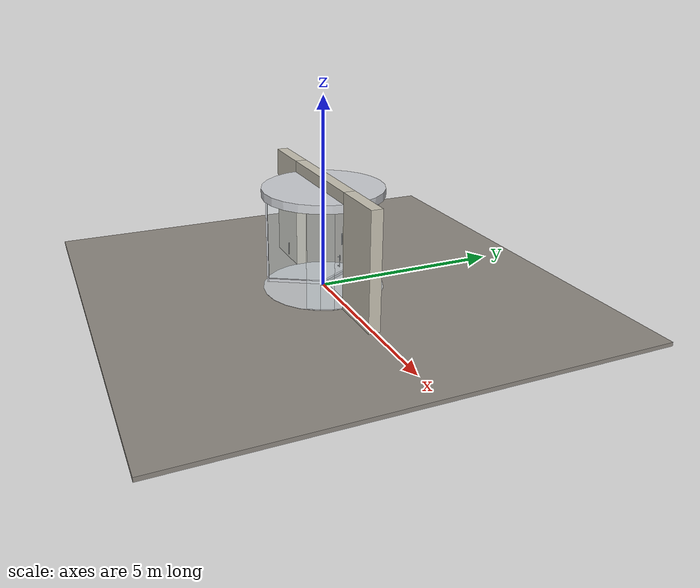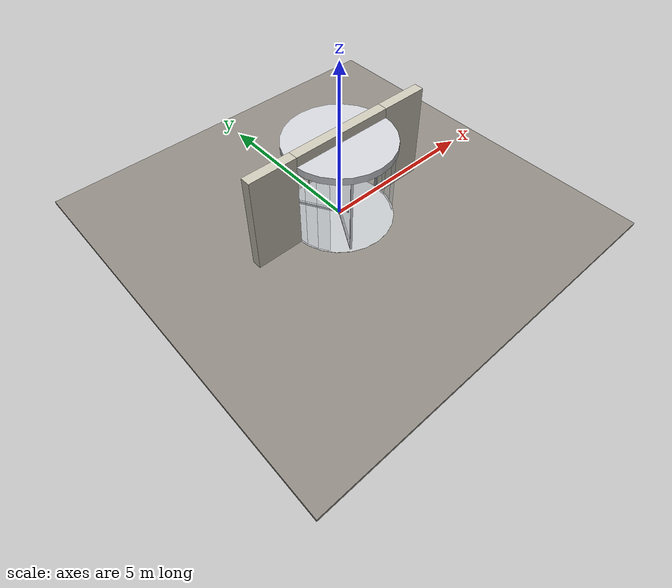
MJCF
<?xml version="1.0" ?>
<mujoco model="db0066_revolving_full">
  <compiler angle="radian" meshdir="../../hardware" texturedir="../../textures" autolimits="true" inertiafromgeom="false"/>
  <option timestep="0.002" integrator="implicitfast" cone="elliptic" impratio="10" noslip_iterations="3">
    <flag multiccd="enable"/>
  </option>
  <size memory="16M"/>
  <default>
    <geom condim="4" solref="0.005 1" solimp="0.95 0.99 0.001"/>
    <joint solreflimit="0.005 1" solimplimit="0.95 0.99 0.001"/>
    <tendon solreflimit="0.005 1"/>
    <equality solref="0.002 1"/>
  </default>
  <visual>
    <headlight ambient="0.4 0.4 0.4" diffuse="0.7 0.7 0.7" specular="0.2 0.2 0.2"/>
    <quality shadowsize="4096"/>
    <map znear="0.01" zfar="60"/>
  </visual>
  <asset>
    <material name="mat_floor" rgba="0.55 0.53 0.5 1" specular="0.2" shininess="0.15" reflectance="0"/>
    <material name="mat_wall" rgba="0.78 0.76 0.7 1" specular="0.2" shininess="0.1" reflectance="0"/>
    <material name="mat_frame" rgba="0.8 0.81 0.83 1" specular="0.8" shininess="0.6" reflectance="0.4"/>
    <material name="mat_drum_glass" rgba="0.85 0.92 0.95 0.25" specular="0.2" shininess="0.95" reflectance="0.1"/>
    <material name="mat_floor_ring" rgba="0.75 0.76 0.77 1" specular="0.8" shininess="0.65" reflectance="0.4"/>
    <material name="mat_op_stainless" rgba="0.75 0.76 0.77 1" specular="0.8" shininess="0.65" reflectance="0.4"/>
    <texture name="skybox" type="skybox" builtin="gradient" rgb1="0.6 0.7 0.85" rgb2="0.9 0.92 0.95" width="256" height="256"/>
  </asset>
  <worldbody>
    <light name="sun" pos="1.5 -2.5 4" dir="-0.3 0.5 -0.8" directional="true" diffuse="0.8 0.8 0.8" specular="0.3 0.3 0.3" castshadow="true"/>
    <light name="fill" pos="-1.5 2.5 3" dir="0.3 -0.5 -0.7" directional="true" diffuse="0.35 0.35 0.4" castshadow="false"/>
    <camera name="robot_view" pos="0 -3.53125 2.33875" xyaxes="1 0 0 0 0.26963 0.962964" fovy="52"/>
    <camera name="far_view" pos="0 3.53125 2.33875" xyaxes="-1 0 0 0 -0.26963 0.962964" fovy="52"/>
    <camera name="iso" pos="2.68375 -2.96625 2.90375" xyaxes="0.741536 0.670913 0 -0.242917 0.268487 0.932151" fovy="46"/>
    <camera name="detail_handle" pos="0.55 -1.1 1.35" xyaxes="0.975133 0.221621 0 -0.065674 0.288965 0.955084" fovy="38"/>
    <geom name="floor" type="box" size="6 6 0.05" pos="0 0 -0.05" material="mat_floor" group="0" contype="1" conaffinity="1" friction="0.8 0.005 0.0001" density="2400"/>
    <geom name="wall_left" type="box" size="0.725 0.15 1.5" pos="-2.275 0 1.5" material="mat_wall" group="0" contype="1" conaffinity="1" friction="0.6 0.005 0.0001" density="800"/>
    <geom name="wall_right" type="box" size="0.725 0.15 1.5" pos="2.275 0 1.5" material="mat_wall" group="0" contype="1" conaffinity="1" friction="0.6 0.005 0.0001" density="800"/>
    <geom name="wall_header" type="box" size="1.55 0.15 0.15" pos="0 0 2.85" material="mat_wall" group="0" contype="1" conaffinity="1" friction="0.6 0.005 0.0001" density="800"/>
    <geom name="drum_0" type="box" size="0.172544 0.006 1.2425" pos="1.510443 0.170186 1.2425" quat="0.666347 0 0 0.745642" material="mat_drum_glass" group="0" contype="1" conaffinity="1" friction="0.6 0.005 0.0001" density="2500"/>
    <geom name="drum_1" type="box" size="0.172544 0.006 1.2425" pos="1.434703 0.502024 1.2425" quat="0.578671 0 0 0.815561" material="mat_drum_glass" group="0" contype="1" conaffinity="1" friction="0.6 0.005 0.0001" density="2500"/>
    <geom name="drum_2" type="box" size="0.172544 0.006 1.2425" pos="1.287021 0.808689 1.2425" quat="0.483719 0 0 0.875223" material="mat_drum_glass" group="0" contype="1" conaffinity="1" friction="0.6 0.005 0.0001" density="2500"/>
    <geom name="drum_11" type="box" size="0.172544 0.006 1.2425" pos="-1.287021 0.808689 1.2425" quat="-0.483719 0 0 0.875223" material="mat_drum_glass" group="0" contype="1" conaffinity="1" friction="0.6 0.005 0.0001" density="2500"/>
    <geom name="drum_12" type="box" size="0.172544 0.006 1.2425" pos="-1.434703 0.502024 1.2425" quat="-0.578671 0 0 0.815561" material="mat_drum_glass" group="0" contype="1" conaffinity="1" friction="0.6 0.005 0.0001" density="2500"/>
    <geom name="drum_13" type="box" size="0.172544 0.006 1.2425" pos="-1.510443 0.170186 1.2425" quat="-0.666347 0 0 0.745642" material="mat_drum_glass" group="0" contype="1" conaffinity="1" friction="0.6 0.005 0.0001" density="2500"/>
    <geom name="drum_14" type="box" size="0.172544 0.006 1.2425" pos="-1.510443 -0.170186 1.2425" quat="-0.745642 0 0 0.666347" material="mat_drum_glass" group="0" contype="1" conaffinity="1" friction="0.6 0.005 0.0001" density="2500"/>
    <geom name="drum_15" type="box" size="0.172544 0.006 1.2425" pos="-1.434703 -0.502024 1.2425" quat="-0.815561 0 0 0.578671" material="mat_drum_glass" group="0" contype="1" conaffinity="1" friction="0.6 0.005 0.0001" density="2500"/>
    <geom name="drum_16" type="box" size="0.172544 0.006 1.2425" pos="-1.287021 -0.808689 1.2425" quat="-0.875223 0 0 0.483719" material="mat_drum_glass" group="0" contype="1" conaffinity="1" friction="0.6 0.005 0.0001" density="2500"/>
    <geom name="drum_25" type="box" size="0.172544 0.006 1.2425" pos="1.287021 -0.808689 1.2425" quat="-0.875223 0 0 -0.483719" material="mat_drum_glass" group="0" contype="1" conaffinity="1" friction="0.6 0.005 0.0001" density="2500"/>
    <geom name="drum_26" type="box" size="0.172544 0.006 1.2425" pos="1.434703 -0.502024 1.2425" quat="-0.815561 0 0 -0.578671" material="mat_drum_glass" group="0" contype="1" conaffinity="1" friction="0.6 0.005 0.0001" density="2500"/>
    <geom name="drum_27" type="box" size="0.172544 0.006 1.2425" pos="1.510443 -0.170186 1.2425" quat="-0.745642 0 0 -0.666347" material="mat_drum_glass" group="0" contype="1" conaffinity="1" friction="0.6 0.005 0.0001" density="2500"/>
    <geom name="drum_canopy" type="cylinder" size="1.58 0.1075" pos="0 0 2.5925" material="mat_frame" group="0" contype="1" conaffinity="1" friction="0.6 0.005 0.0001" density="300"/>
    <geom name="rotor_top_bearing" type="cylinder" size="0.075 0.003" pos="0 0 2.482" material="mat_frame" group="0" contype="1" conaffinity="1" friction="0.6 0.005 0.0001" density="2700"/>
    <geom name="drum_floor_ring" type="cylinder" size="1.58 0.003" pos="0 0 0.003" material="mat_floor_ring" group="1" contype="0" conaffinity="0" density="7900"/>
    <geom name="rotor_floor_pivot" type="cylinder" size="0.075 0.003" pos="0 0 0.009" material="mat_frame" group="0" contype="1" conaffinity="1" friction="0.6 0.005 0.0001" density="2700"/>
    <site name="approach_point" pos="0 -2.5 0" quat="1 0 0 0" size="0.05" rgba="0.2 0.9 0.2 0.5" group="4"/>
    <site name="goal_point" pos="0 2.5 0" quat="1 0 0 0" size="0.05" rgba="0.2 0.9 0.2 0.5" group="4"/>
    <site name="door_plane_center" pos="0 0 1.2" quat="1 0 0 0" size="0.02" rgba="0.2 0.9 0.2 0.5" group="4"/>
    <body name="rotor" pos="0 0 0">
      <inertial pos="0 0 1.245744" mass="267.65" quat="0.707107 0 0.707107 0" diaginertia="203.637323361 279.931290791 279.931290791"/>
      <joint name="rotor_hinge" type="hinge" axis="0 0 1" limited="false" damping="38" frictionloss="5.559261" armature="0.5"/>
      <geom name="rotor_shaft" type="cylinder" size="0.06 1.225" pos="0 0 1.245" material="mat_frame" group="0" contype="1" conaffinity="1" friction="0.6 0.005 0.0001" density="2700"/>
      <geom name="rotor_pintle_b" type="cylinder" size="0.03 0.008" pos="0 0 0.016" material="mat_frame" group="1" contype="0" conaffinity="0" density="2700"/>
      <geom name="rotor_pintle_t" type="cylinder" size="0.03 0.0085" pos="0 0 2.4745" material="mat_frame" group="1" contype="0" conaffinity="0" density="2700"/>
      <geom name="wing_0_glass" type="box" size="0.73 0.005 1.15" pos="0.75 0 1.25" material="mat_drum_glass" group="0" contype="1" conaffinity="1" friction="0.6 0.005 0.0001" density="2500"/>
      <geom name="wing_0_stile" type="box" size="0.02 0.03 1.225" pos="1.48 0 1.245" material="mat_frame" group="0" contype="1" conaffinity="1" friction="0.6 0.005 0.0001" density="2700"/>
      <geom name="wing_0_rail_b" type="box" size="0.73 0.03 0.04" pos="0.73 0 0.06" material="mat_frame" group="0" contype="1" conaffinity="1" friction="0.6 0.005 0.0001" density="2700"/>
      <geom name="wing_0_rail_t" type="box" size="0.73 0.03 0.04" pos="0.73 0 2.43" material="mat_frame" group="0" contype="1" conaffinity="1" friction="0.6 0.005 0.0001" density="2700"/>
      <geom name="wing_0_bar" type="capsule" size="0.012 0.15" pos="0.9 0.055 1" material="mat_op_stainless" group="0" contype="1" conaffinity="1" friction="0.7 0.01 0.0001" density="7900"/>
      <geom name="wing_0_bar_stud_d" type="cylinder" size="0.009 0.028" pos="0.9 0.031 0.88" quat="0.707107 -0.707107 0 0" material="mat_op_stainless" group="1" contype="0" conaffinity="0" density="7900"/>
      <geom name="wing_0_bar_stud_u" type="cylinder" size="0.009 0.028" pos="0.9 0.031 1.12" quat="0.707107 -0.707107 0 0" material="mat_op_stainless" group="1" contype="0" conaffinity="0" density="7900"/>
      <geom name="wing_1_glass" type="box" size="0.73 0.005 1.15" pos="-0.375 0.649519 1.25" quat="0.5 0 0 0.866025" material="mat_drum_glass" group="0" contype="1" conaffinity="1" friction="0.6 0.005 0.0001" density="2500"/>
      <geom name="wing_1_stile" type="box" size="0.02 0.03 1.225" pos="-0.74 1.281718 1.245" quat="0.5 0 0 0.866025" material="mat_frame" group="0" contype="1" conaffinity="1" friction="0.6 0.005 0.0001" density="2700"/>
      <geom name="wing_1_rail_b" type="box" size="0.73 0.03 0.04" pos="-0.365 0.632199 0.06" quat="0.5 0 0 0.866025" material="mat_frame" group="0" contype="1" conaffinity="1" friction="0.6 0.005 0.0001" density="2700"/>
      <geom name="wing_1_rail_t" type="box" size="0.73 0.03 0.04" pos="-0.365 0.632199 2.43" quat="0.5 0 0 0.866025" material="mat_frame" group="0" contype="1" conaffinity="1" friction="0.6 0.005 0.0001" density="2700"/>
      <geom name="wing_1_bar" type="capsule" size="0.012 0.15" pos="-0.497631 0.751923 1" material="mat_op_stainless" group="0" contype="1" conaffinity="1" friction="0.7 0.01 0.0001" density="7900"/>
      <geom name="wing_1_bar_stud_d" type="cylinder" size="0.009 0.028" pos="-0.476847 0.763923 0.88" quat="0.707107 0.353553 -0.612372 0" material="mat_op_stainless" group="1" contype="0" conaffinity="0" density="7900"/>
      <geom name="wing_1_bar_stud_u" type="cylinder" size="0.009 0.028" pos="-0.476847 0.763923 1.12" quat="0.707107 0.353553 -0.612372 0" material="mat_op_stainless" group="1" contype="0" conaffinity="0" density="7900"/>
      <geom name="wing_2_glass" type="box" size="0.73 0.005 1.15" pos="-0.375 -0.649519 1.25" quat="-0.5 0 0 0.866025" material="mat_drum_glass" group="0" contype="1" conaffinity="1" friction="0.6 0.005 0.0001" density="2500"/>
      <geom name="wing_2_stile" type="box" size="0.02 0.03 1.225" pos="-0.74 -1.281718 1.245" quat="-0.5 0 0 0.866025" material="mat_frame" group="0" contype="1" conaffinity="1" friction="0.6 0.005 0.0001" density="2700"/>
      <geom name="wing_2_rail_b" type="box" size="0.73 0.03 0.04" pos="-0.365 -0.632199 0.06" quat="-0.5 0 0 0.866025" material="mat_frame" group="0" contype="1" conaffinity="1" friction="0.6 0.005 0.0001" density="2700"/>
      <geom name="wing_2_rail_t" type="box" size="0.73 0.03 0.04" pos="-0.365 -0.632199 2.43" quat="-0.5 0 0 0.866025" material="mat_frame" group="0" contype="1" conaffinity="1" friction="0.6 0.005 0.0001" density="2700"/>
      <geom name="wing_2_bar" type="capsule" size="0.012 0.15" pos="-0.402369 -0.806923 1" material="mat_op_stainless" group="0" contype="1" conaffinity="1" friction="0.7 0.01 0.0001" density="7900"/>
      <geom name="wing_2_bar_stud_d" type="cylinder" size="0.009 0.028" pos="-0.423153 -0.794923 0.88" quat="0.707107 0.353553 0.612372 0" material="mat_op_stainless" group="1" contype="0" conaffinity="0" density="7900"/>
      <geom name="wing_2_bar_stud_u" type="cylinder" size="0.009 0.028" pos="-0.423153 -0.794923 1.12" quat="0.707107 0.353553 0.612372 0" material="mat_op_stainless" group="1" contype="0" conaffinity="0" density="7900"/>
      <site name="wing_0_push" pos="0.9 0.055 1" quat="1 0 0 0" size="0.015" rgba="0.2 0.9 0.2 0.5" group="4"/>
      <site name="wing_1_push" pos="-0.497631 0.751923 1" quat="1 0 0 0" size="0.015" rgba="0.2 0.9 0.2 0.5" group="4"/>
      <site name="wing_2_push" pos="-0.402369 -0.806923 1" quat="1 0 0 0" size="0.015" rgba="0.2 0.9 0.2 0.5" group="4"/>
    </body>
  </worldbody>
  <sensor>
    <jointpos name="rotor_hinge_pos" joint="rotor_hinge"/>
    <jointvel name="rotor_hinge_vel" joint="rotor_hinge"/>
  </sensor>
</mujoco>
